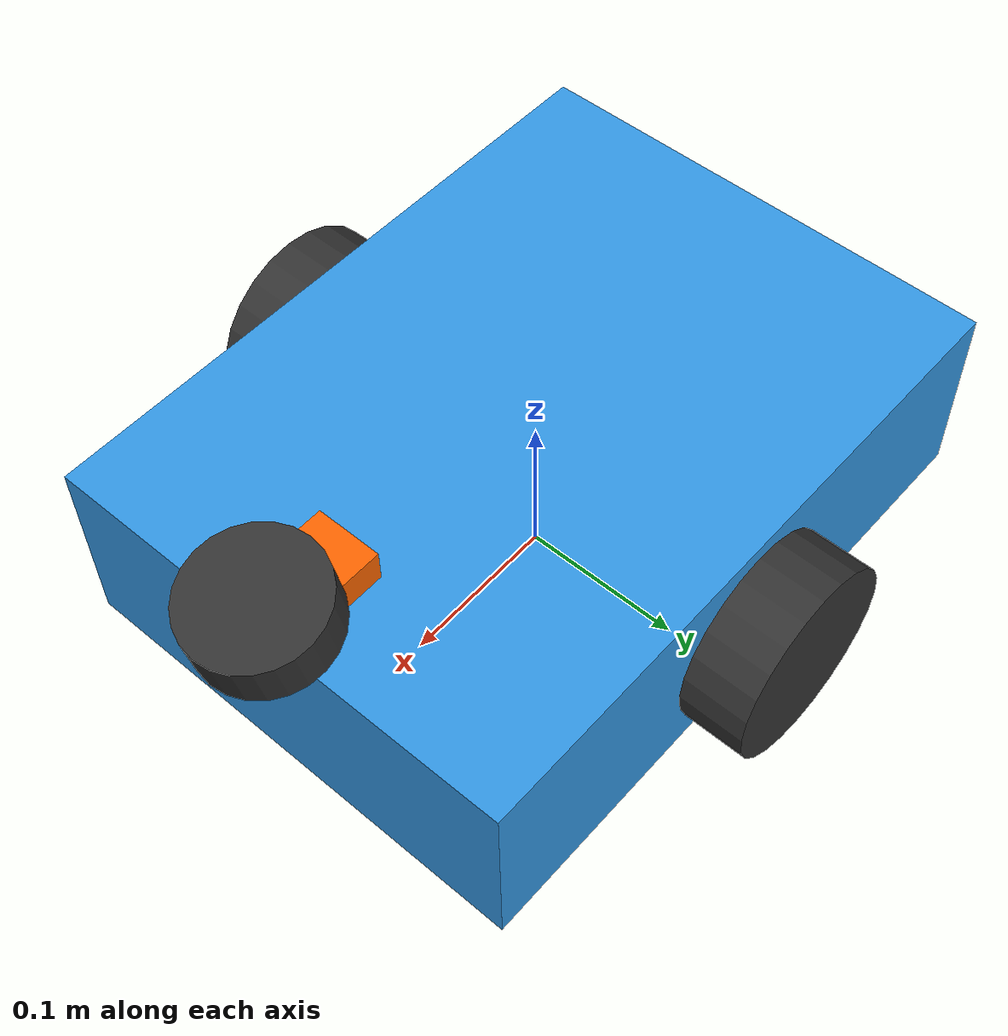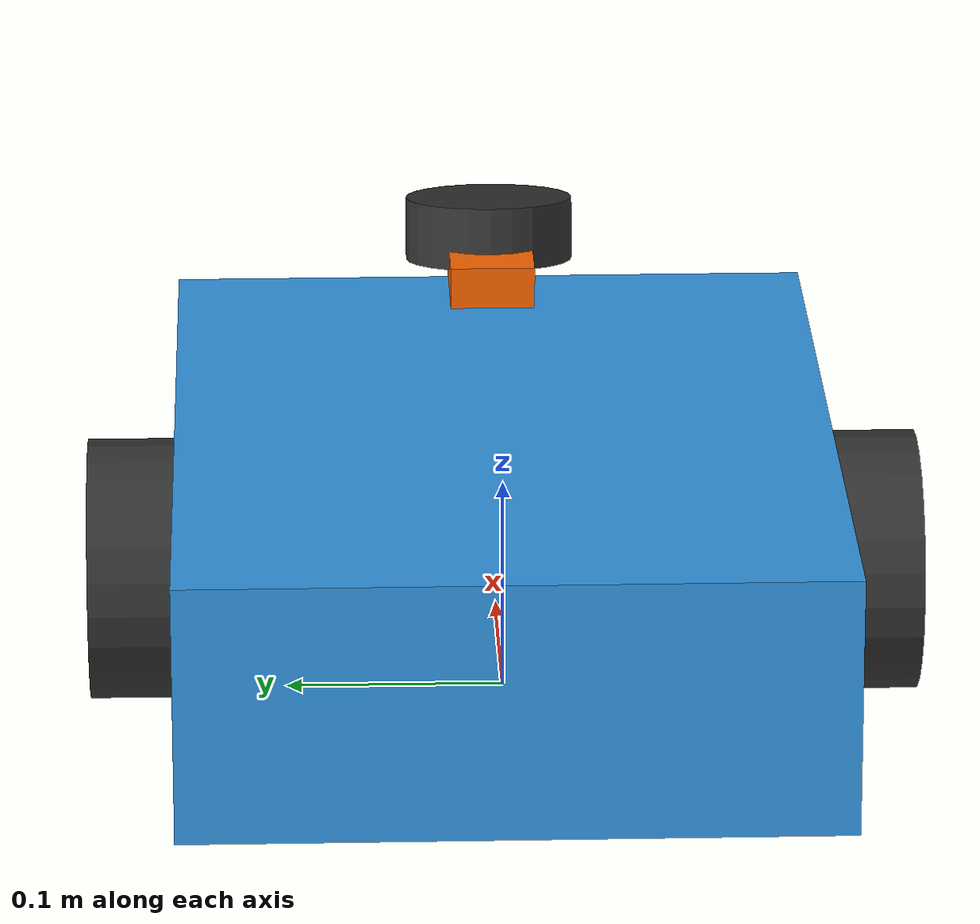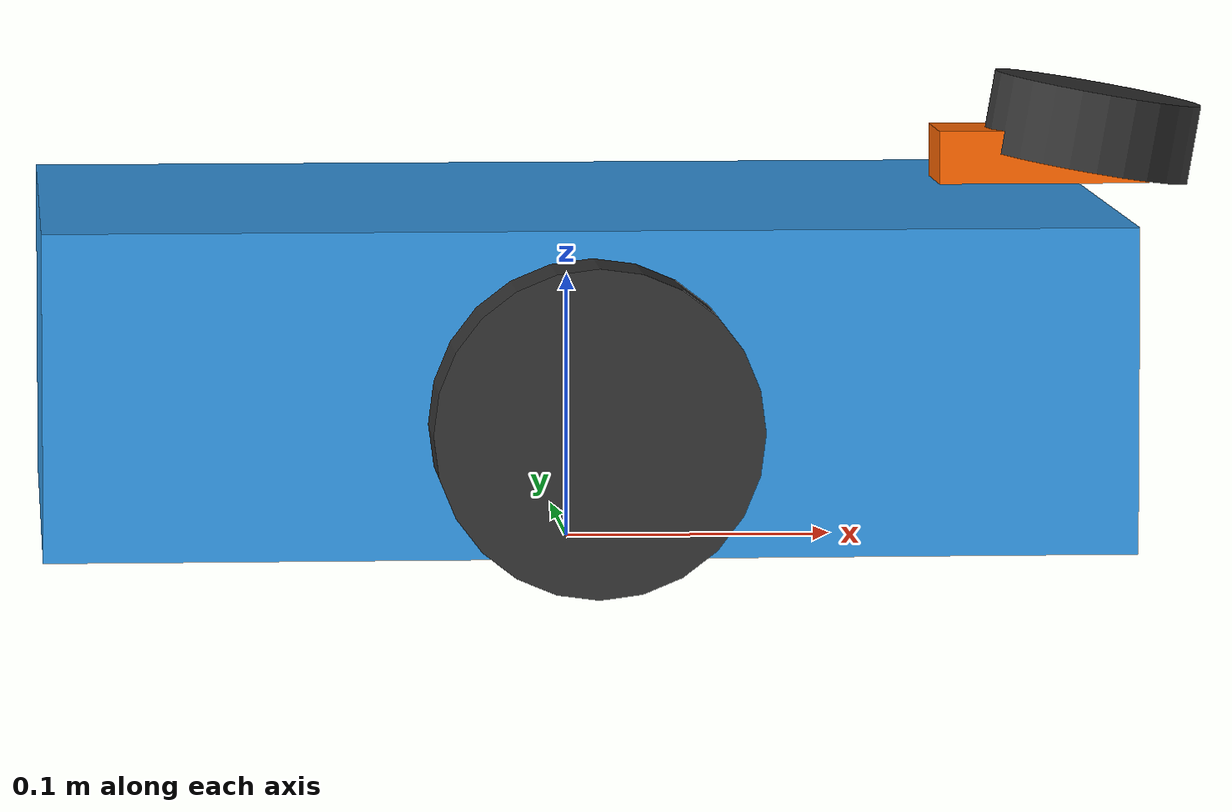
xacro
<?xml version="1.0"?>
<robot xmlns:xacro="http://www.ros.org/wiki/xacro" name="diff_drive_robot">

  <!-- Parameters -->
  <xacro:property name="base_length" value="0.4"/>
  <xacro:property name="base_width" value="0.3"/>
  <xacro:property name="base_height" value="0.12"/>
  <xacro:property name="wheel_radius" value="0.06"/>
  <xacro:property name="wheel_width" value="0.04"/>
  <xacro:property name="wheel_separation" value="0.34"/>
  <xacro:property name="caster_radius" value="0.03"/>
  <xacro:property name="base_z_offset" value="${wheel_radius + 0.01}"/>

  <!-- Materials -->
  <material name="blue">
    <color rgba="0.2 0.6 0.9 1.0"/>
  </material>
  <material name="dark_grey">
    <color rgba="0.2 0.2 0.2 1.0"/>
  </material>
  <material name="orange">
    <color rgba="1.0 0.4 0.0 1.0"/>
  </material>

  <!-- Base Link -->
  <link name="base_footprint"/>

  <link name="base_link">
    <visual>
      <geometry>
        <box size="${base_length} ${base_width} ${base_height}"/>
      </geometry>
      <material name="blue"/>
    </visual>
    <collision>
      <geometry>
        <box size="${base_length} ${base_width} ${base_height}"/>
      </geometry>
    </collision>
    <inertial>
      <mass value="5.0"/>
      <inertia ixx="0.05" ixy="0" ixz="0" iyy="0.08" iyz="0" izz="0.09"/>
    </inertial>
  </link>

  <joint name="base_footprint_joint" type="fixed">
    <parent link="base_footprint"/>
    <child link="base_link"/>
    <origin xyz="0 0 ${base_z_offset}" rpy="0 0 0"/>
  </joint>

  <!-- Direction indicator (front arrow) -->
  <link name="front_marker">
    <visual>
      <geometry>
        <box size="0.08 0.04 0.02"/>
      </geometry>
      <material name="orange"/>
    </visual>
    <inertial>
      <mass value="0.01"/>
      <inertia ixx="0.00001" ixy="0" ixz="0" iyy="0.00001" iyz="0" izz="0.00001"/>
    </inertial>
  </link>

  <joint name="front_marker_joint" type="fixed">
    <parent link="base_link"/>
    <child link="front_marker"/>
    <origin xyz="${base_length/2 - 0.02} 0 ${base_height/2 + 0.015}" rpy="0 0 0"/>
  </joint>

  <!-- Left Wheel -->
  <link name="left_wheel">
    <visual>
      <geometry>
        <cylinder radius="${wheel_radius}" length="${wheel_width}"/>
      </geometry>
      <material name="dark_grey"/>
    </visual>
    <collision>
      <geometry>
        <cylinder radius="${wheel_radius}" length="${wheel_width}"/>
      </geometry>
    </collision>
    <inertial>
      <mass value="0.5"/>
      <inertia ixx="0.001" ixy="0" ixz="0" iyy="0.001" iyz="0" izz="0.001"/>
    </inertial>
  </link>

  <joint name="left_wheel_joint" type="continuous">
    <parent link="base_link"/>
    <child link="left_wheel"/>
    <origin xyz="0 ${wheel_separation/2} ${-base_z_offset + wheel_radius}" rpy="${-pi/2} 0 0"/>
    <axis xyz="0 0 1"/>
  </joint>

  <!-- Right Wheel -->
  <link name="right_wheel">
    <visual>
      <geometry>
        <cylinder radius="${wheel_radius}" length="${wheel_width}"/>
      </geometry>
      <material name="dark_grey"/>
    </visual>
    <collision>
      <geometry>
        <cylinder radius="${wheel_radius}" length="${wheel_width}"/>
      </geometry>
    </collision>
    <inertial>
      <mass value="0.5"/>
      <inertia ixx="0.001" ixy="0" ixz="0" iyy="0.001" iyz="0" izz="0.001"/>
    </inertial>
  </link>

  <joint name="right_wheel_joint" type="continuous">
    <parent link="base_link"/>
    <child link="right_wheel"/>
    <origin xyz="0 ${-wheel_separation/2} ${-base_z_offset + wheel_radius}" rpy="${-pi/2} 0 0"/>
    <axis xyz="0 0 1"/>
  </joint>

  <!-- Front Caster -->
  <link name="front_caster">
    <visual>
      <geometry>
        <sphere radius="${caster_radius}"/>
      </geometry>
      <material name="dark_grey"/>
    </visual>
    <collision>
      <geometry>
        <sphere radius="${caster_radius}"/>
      </geometry>
    </collision>
    <inertial>
      <mass value="0.1"/>
      <inertia ixx="0.0001" ixy="0" ixz="0" iyy="0.0001" iyz="0" izz="0.0001"/>
    </inertial>
  </link>

  <joint name="front_caster_joint" type="fixed">
    <parent link="base_link"/>
    <child link="front_caster"/>
    <origin xyz="${base_length/2 - 0.05} 0 ${-base_z_offset + caster_radius}" rpy="0 0 0"/>
  </joint>

  <!-- Rear Caster -->
  <link name="rear_caster">
    <visual>
      <geometry>
        <sphere radius="${caster_radius}"/>
      </geometry>
      <material name="dark_grey"/>
    </visual>
    <collision>
      <geometry>
        <sphere radius="${caster_radius}"/>
      </geometry>
    </collision>
    <inertial>
      <mass value="0.1"/>
      <inertia ixx="0.0001" ixy="0" ixz="0" iyy="0.0001" iyz="0" izz="0.0001"/>
    </inertial>
  </link>

  <joint name="rear_caster_joint" type="fixed">
    <parent link="base_link"/>
    <child link="rear_caster"/>
    <origin xyz="${-base_length/2 + 0.05} 0 ${-base_z_offset + caster_radius}" rpy="0 0 0"/>
  </joint>

  <!-- 3D LiDAR (mimics real robot dog: front-mounted, 10° downward pitch) -->
  <link name="lidar_link">
    <visual>
      <geometry>
        <cylinder radius="0.04" length="0.03"/>
      </geometry>
      <material name="dark_grey"/>
    </visual>
    <inertial>
      <mass value="0.1"/>
      <inertia ixx="0.0001" ixy="0" ixz="0" iyy="0.0001" iyz="0" izz="0.0001"/>
    </inertial>
  </link>

  <joint name="lidar_joint" type="fixed">
    <parent link="base_link"/>
    <child link="lidar_link"/>
    <origin xyz="${base_length/2} 0 ${base_height/2 + 0.025}" rpy="0 0.174533 0"/>
  </joint>

  <!-- Gazebo Plugins -->

  <!-- Differential Drive -->
  <gazebo>
    <plugin name="diff_drive" filename="libgazebo_ros_diff_drive.so">
      <ros>
        <remapping>cmd_vel:=cmd_vel</remapping>
        <remapping>odom:=odom</remapping>
      </ros>
      <update_rate>50</update_rate>
      <left_joint>left_wheel_joint</left_joint>
      <right_joint>right_wheel_joint</right_joint>
      <wheel_separation>${wheel_separation}</wheel_separation>
      <wheel_diameter>${wheel_radius * 2}</wheel_diameter>
      <max_wheel_torque>10.0</max_wheel_torque>
      <max_wheel_acceleration>2.0</max_wheel_acceleration>
      <publish_odom>true</publish_odom>
      <publish_odom_tf>true</publish_odom_tf>
      <publish_wheel_tf>false</publish_wheel_tf>
      <odometry_frame>map</odometry_frame>
      <robot_base_frame>base_footprint</robot_base_frame>
      <odometry_source>1</odometry_source>
      <cmd_vel_timeout>0.2</cmd_vel_timeout>
    </plugin>
  </gazebo>

  <!-- Joint State Publisher -->
  <gazebo>
    <plugin name="joint_states" filename="libgazebo_ros_joint_state_publisher.so">
      <ros>
        <remapping>joint_states:=joint_states</remapping>
      </ros>
      <update_rate>50</update_rate>
      <joint_name>left_wheel_joint</joint_name>
      <joint_name>right_wheel_joint</joint_name>
    </plugin>
  </gazebo>

  <!-- 3D LiDAR: 360° HFOV, -7°~52° VFOV, 10Hz, PointCloud2 output -->
  <gazebo reference="lidar_link">
    <sensor type="gpu_ray" name="lidar_3d">
      <pose>0 0 0 0 0 0</pose>
      <visualize>false</visualize>
      <update_rate>10</update_rate>
      <ray>
        <scan>
          <horizontal>
            <samples>720</samples>
            <resolution>1</resolution>
            <min_angle>-3.14159</min_angle>
            <max_angle>3.14159</max_angle>
          </horizontal>
          <vertical>
            <samples>28</samples>
            <min_angle>-0.122173</min_angle>
            <max_angle>0.907571</max_angle>
          </vertical>
        </scan>
        <range>
          <min>0.15</min>
          <max>30.0</max>
          <resolution>0.01</resolution>
        </range>
      </ray>
      <plugin name="lidar_3d_plugin" filename="libgazebo_ros_ray_sensor.so">
        <ros>
          <remapping>~/out:=lidar_points</remapping>
        </ros>
        <output_type>sensor_msgs/PointCloud2</output_type>
        <frame_name>lidar_link</frame_name>
      </plugin>
    </sensor>
  </gazebo>

  <!-- Gazebo materials -->
  <gazebo reference="base_link">
    <material>Gazebo/Blue</material>
  </gazebo>
  <gazebo reference="left_wheel">
    <material>Gazebo/DarkGrey</material>
    <mu1>1.0</mu1>
    <mu2>1.0</mu2>
  </gazebo>
  <gazebo reference="right_wheel">
    <material>Gazebo/DarkGrey</material>
    <mu1>1.0</mu1>
    <mu2>1.0</mu2>
  </gazebo>
  <gazebo reference="front_caster">
    <material>Gazebo/DarkGrey</material>
    <mu1>0.0</mu1>
    <mu2>0.0</mu2>
  </gazebo>
  <gazebo reference="rear_caster">
    <material>Gazebo/DarkGrey</material>
    <mu1>0.0</mu1>
    <mu2>0.0</mu2>
  </gazebo>

</robot>
